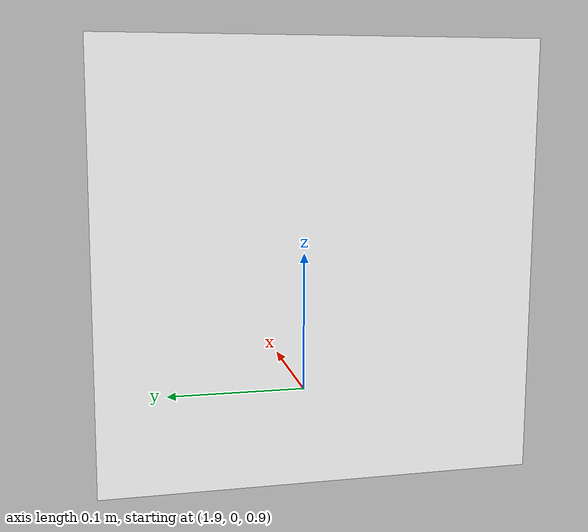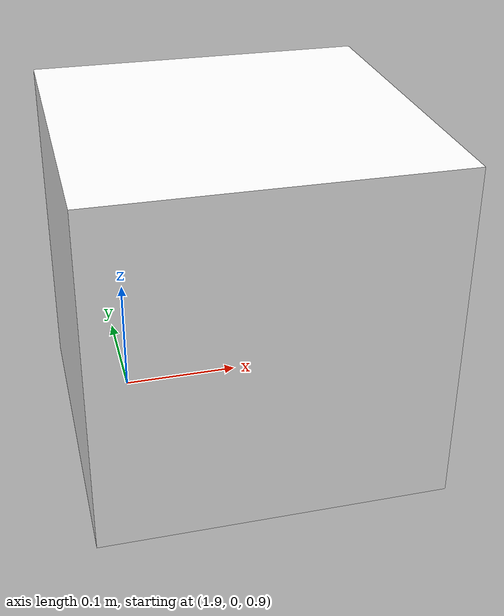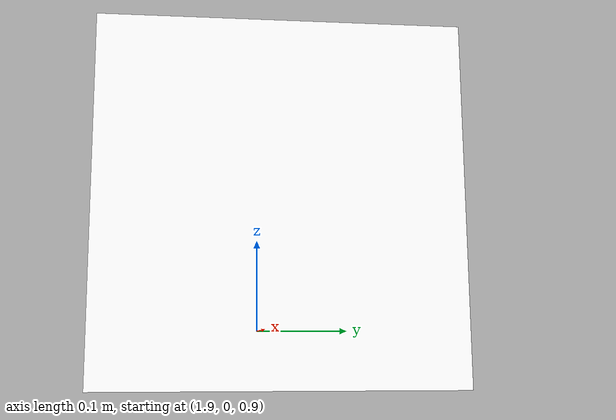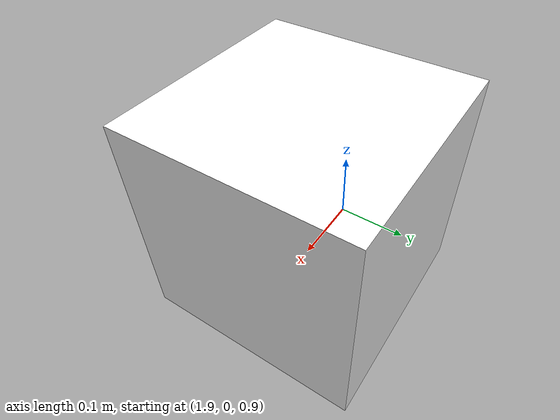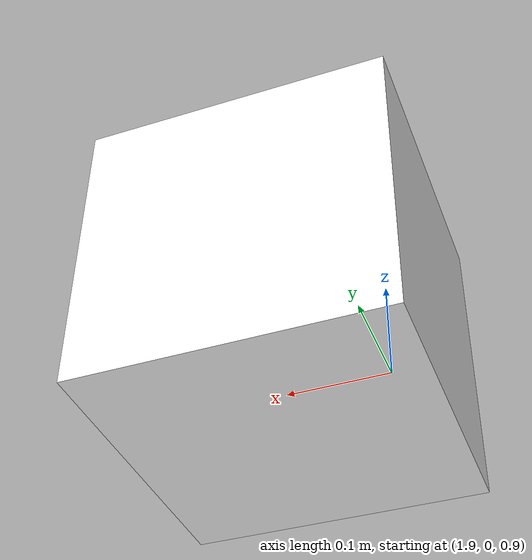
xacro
<?xml version="1.0"?>
<robot xmlns:xacro="http://www.ros.org/wiki/xacro" name="cube">

    <xacro:property name="mass_cube" value="0.5"/>
    <xacro:property name="dimension_cube" value="0.3"/>

    <link name="world"/>

    <joint name="odom_to_world" type="fixed">
        <parent link="world"/>
        <child link="odom_button"/>
        <origin rpy="0 0 0" xyz="2.0 0.0 1.0"/>
    </joint>

    <link name="odom_button">
        <inertial>
            <mass value="${mass_cube}"/>
            <origin rpy="0 0 0" xyz="0 0 0"/>
            <inertia ixx="0.12" ixy="0" ixz="0" iyy="0.14" iyz="0" izz="0.18"/>
        </inertial>
    </link>

    <joint name="articulation_joint" type="prismatic">
        <parent link="odom_button"/>
        <child link="button_x"/>
        <origin rpy="0 0 0" xyz="0.0 0.0 0.0"/>
        <axis xyz="1 0 0"/>
        <limit effort="1000.0" velocity="5.0" lower="-100" upper="100"/>
        <dynamics spring_mount="0 0 0" stiffness="10.0" damping="1"/>
    </joint>

    <link name="button_x">
        <inertial>
            <mass value="${mass_cube}"/>
            <origin rpy="0 0 0" xyz="0 0 0"/>
            <inertia ixx="0.12" ixy="0" ixz="0" iyy="0.14" iyz="0" izz="0.18"/>
        </inertial>
        <collision>
            <origin rpy="0 0 0" xyz="0 0 0.0"/>
            <geometry>
                <box size="${dimension_cube} ${dimension_cube} ${dimension_cube}"/>
            </geometry>
            <material name="">
                <contact name="rubber"/>
            </material>
        </collision>
        <visual>
            <origin rpy="0 0 0" xyz="0 0 0"/>
            <geometry>
                <box size="${dimension_cube} ${dimension_cube} ${dimension_cube}"/>
            </geometry>
            <material name="">
                <color rgba="1 1 1 1"/>
            </material>
        </visual>
    </link>
</robot>
